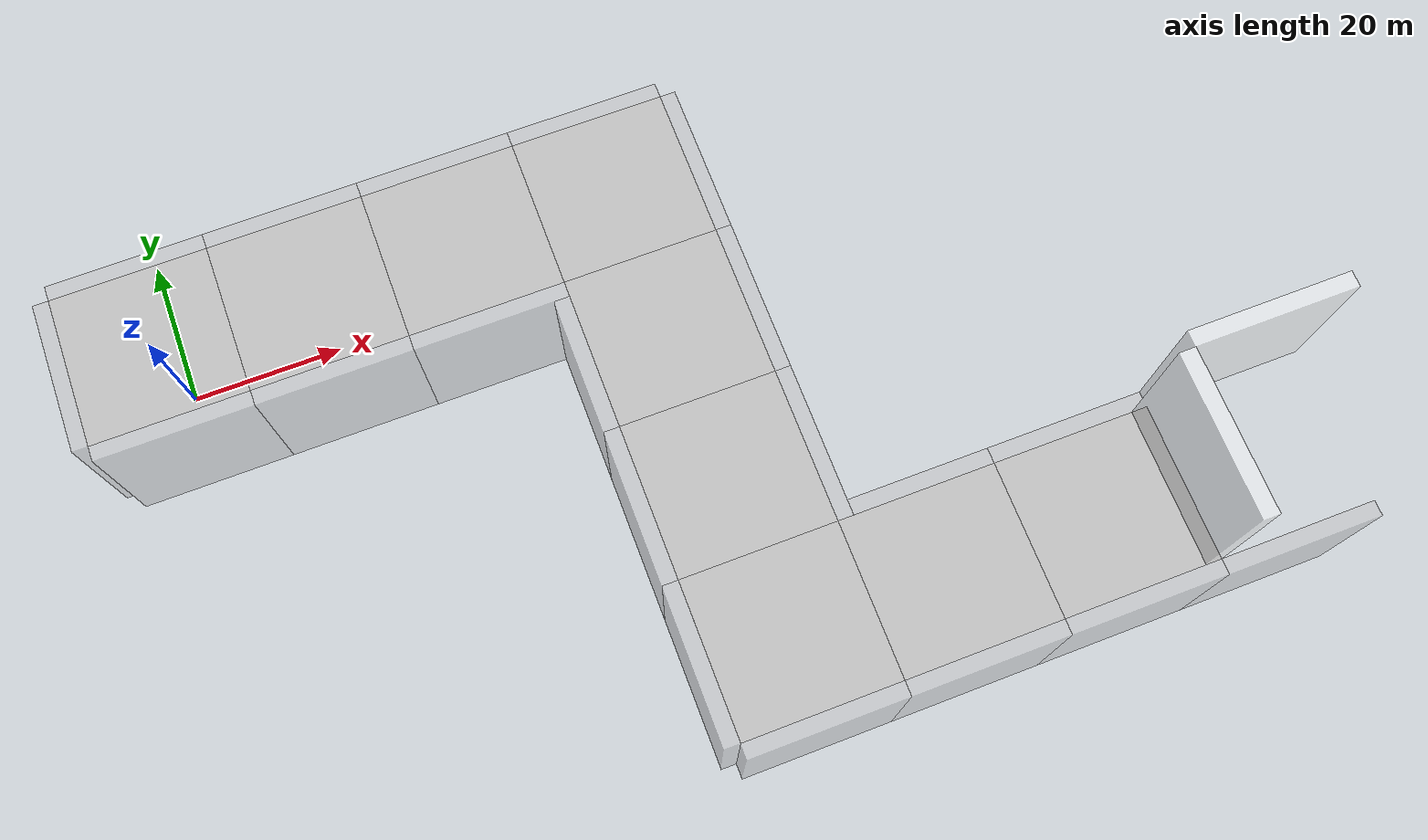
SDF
<sdf version="1.7">
 <model name="race2">
  <link name="link">
   <pose>0 11 10 -1.5708 0 0</pose>
   <visual name="visual">
    <transparency>0.6</transparency>
    <geometry><box><size>20 20 2</size></box></geometry>
    <material>
     <script>
      <uri>model://new_wall/materials/scripts</uri>
      <uri>model://new_wall/materials/textures/</uri>
      <name>NewWall/Image</name>
     </script>
     <shader type="pixel"/>
    </material>
   </visual>
   <collision name="collision">
    <geometry><box><size>20 20 2</size></box></geometry>
    <surface>
     <friction>
      <ode><mu>100</mu><mu2>50</mu2><fdir1>0 0 0</fdir1><slip1>0</slip1><slip2>0</slip2></ode>
      <torsional>
       <coefficient>1</coefficient>
       <patch_radius>0</patch_radius>
       <surface_radius>0</surface_radius>
       <use_patch_radius>1</use_patch_radius>
       <ode><slip>0</slip></ode>
      </torsional>
     </friction>
     <bounce><restitution_coefficient>0</restitution_coefficient><threshold>1e+06</threshold></bounce>
     <contact>
      <collide_without_contact>0</collide_without_contact>
      <collide_without_contact_bitmask>1</collide_without_contact_bitmask>
      <collide_bitmask>1</collide_bitmask>
      <ode>
       <soft_cfm>0</soft_cfm>
       <soft_erp>0.2</soft_erp>
       <kp>1e+13</kp>
       <kd>1</kd>
       <max_vel>0.01</max_vel>
       <min_depth>0</min_depth>
      </ode>
      <bullet>
       <split_impulse>1</split_impulse>
       <split_impulse_penetration_threshold>-0.01</split_impulse_penetration_threshold>
       <soft_cfm>0</soft_cfm>
       <soft_erp>0.2</soft_erp>
       <kp>1e+13</kp>
       <kd>1</kd>
      </bullet>
     </contact>
    </surface>
   </collision>
  </link>
  <link name="link_clone">
   <pose>0 -11 10 -1.5708 0 0</pose>
   <visual name="visual">
    <transparency>0.6</transparency>
    <geometry><box><size>20 20 2</size></box></geometry>
    <material>
     <script>
      <uri>model://new_wall/materials/scripts</uri>
      <uri>model://new_wall/materials/textures/</uri>
      <name>NewWall/Image</name>
     </script>
     <shader type="pixel"/>
    </material>
   </visual>
   <collision name="collision">
    <geometry><box><size>20 20 2</size></box></geometry>
    <surface>
     <friction>
      <ode><mu>1</mu><mu2>1</mu2><fdir1>0 0 0</fdir1><slip1>0</slip1><slip2>0</slip2></ode>
      <torsional>
       <coefficient>1</coefficient>
       <patch_radius>0</patch_radius>
       <surface_radius>0</surface_radius>
       <use_patch_radius>1</use_patch_radius>
       <ode><slip>0</slip></ode>
      </torsional>
     </friction>
     <bounce><restitution_coefficient>0</restitution_coefficient><threshold>1e+06</threshold></bounce>
     <contact>
      <collide_without_contact>0</collide_without_contact>
      <collide_without_contact_bitmask>1</collide_without_contact_bitmask>
      <collide_bitmask>1</collide_bitmask>
      <ode>
       <soft_cfm>0</soft_cfm>
       <soft_erp>0.2</soft_erp>
       <kp>1e+13</kp>
       <kd>1</kd>
       <max_vel>0.01</max_vel>
       <min_depth>0</min_depth>
      </ode>
      <bullet>
       <split_impulse>1</split_impulse>
       <split_impulse_penetration_threshold>-0.01</split_impulse_penetration_threshold>
       <soft_cfm>0</soft_cfm>
       <soft_erp>0.2</soft_erp>
       <kp>1e+13</kp>
       <kd>1</kd>
      </bullet>
     </contact>
    </surface>
   </collision>
  </link>
  <link name="link_clone_0">
   <pose>-11 0 10 -1.5708 4e-06 1.5708</pose>
   <visual name="visual">
    <transparency>0.6</transparency>
    <geometry><box><size>20 20 2</size></box></geometry>
    <material>
     <script>
      <uri>model://new_wall/materials/scripts</uri>
      <uri>model://new_wall/materials/textures/</uri>
      <name>NewWall/Image</name>
     </script>
     <shader type="pixel"/>
    </material>
   </visual>
   <collision name="collision">
    <geometry><box><size>20 20 2</size></box></geometry>
    <surface>
     <friction>
      <ode><mu>1</mu><mu2>1</mu2><fdir1>0 0 0</fdir1><slip1>0</slip1><slip2>0</slip2></ode>
      <torsional>
       <coefficient>1</coefficient>
       <patch_radius>0</patch_radius>
       <surface_radius>0</surface_radius>
       <use_patch_radius>1</use_patch_radius>
       <ode><slip>0</slip></ode>
      </torsional>
     </friction>
     <bounce><restitution_coefficient>0</restitution_coefficient><threshold>1e+06</threshold></bounce>
     <contact>
      <collide_without_contact>0</collide_without_contact>
      <collide_without_contact_bitmask>1</collide_without_contact_bitmask>
      <collide_bitmask>1</collide_bitmask>
      <ode>
       <soft_cfm>0</soft_cfm>
       <soft_erp>0.2</soft_erp>
       <kp>1e+13</kp>
       <kd>1</kd>
       <max_vel>0.01</max_vel>
       <min_depth>0</min_depth>
      </ode>
      <bullet>
       <split_impulse>1</split_impulse>
       <split_impulse_penetration_threshold>-0.01</split_impulse_penetration_threshold>
       <soft_cfm>0</soft_cfm>
       <soft_erp>0.2</soft_erp>
       <kp>1e+13</kp>
       <kd>1</kd>
      </bullet>
     </contact>
    </surface>
   </collision>
  </link>
  <link name="link_clone_0_clone">
   <pose>49 -20 10 -1.5708 4e-06 1.5708</pose>
   <visual name="visual">
    <transparency>0.6</transparency>
    <geometry><box><size>20 20 2</size></box></geometry>
    <material>
     <script>
      <uri>model://new_wall/materials/scripts</uri>
      <uri>model://new_wall/materials/textures/</uri>
      <name>NewWall/Image</name>
     </script>
     <shader type="pixel"/>
    </material>
   </visual>
   <collision name="collision">
    <geometry><box><size>20 20 2</size></box></geometry>
    <surface>
     <friction>
      <ode><mu>1</mu><mu2>1</mu2><fdir1>0 0 0</fdir1><slip1>0</slip1><slip2>0</slip2></ode>
      <torsional>
       <coefficient>1</coefficient>
       <patch_radius>0</patch_radius>
       <surface_radius>0</surface_radius>
       <use_patch_radius>1</use_patch_radius>
       <ode><slip>0</slip></ode>
      </torsional>
     </friction>
     <bounce><restitution_coefficient>0</restitution_coefficient><threshold>1e+06</threshold></bounce>
     <contact>
      <collide_without_contact>0</collide_without_contact>
      <collide_without_contact_bitmask>1</collide_without_contact_bitmask>
      <collide_bitmask>1</collide_bitmask>
      <ode>
       <soft_cfm>0</soft_cfm>
       <soft_erp>0.2</soft_erp>
       <kp>1e+13</kp>
       <kd>1</kd>
       <max_vel>0.01</max_vel>
       <min_depth>0</min_depth>
      </ode>
      <bullet>
       <split_impulse>1</split_impulse>
       <split_impulse_penetration_threshold>-0.01</split_impulse_penetration_threshold>
       <soft_cfm>0</soft_cfm>
       <soft_erp>0.2</soft_erp>
       <kp>1e+13</kp>
       <kd>1</kd>
      </bullet>
     </contact>
    </surface>
   </collision>
  </link>
  <link name="link_clone_0_clone_0">
   <pose>71 0 10 -1.5708 4e-06 1.5708</pose>
   <visual name="visual">
    <transparency>0.6</transparency>
    <geometry><box><size>20 20 2</size></box></geometry>
    <material>
     <script>
      <uri>model://new_wall/materials/scripts</uri>
      <uri>model://new_wall/materials/textures/</uri>
      <name>NewWall/Image</name>
     </script>
     <shader type="pixel"/>
    </material>
   </visual>
   <collision name="collision">
    <geometry><box><size>20 20 2</size></box></geometry>
    <surface>
     <friction>
      <ode><mu>1</mu><mu2>1</mu2><fdir1>0 0 0</fdir1><slip1>0</slip1><slip2>0</slip2></ode>
      <torsional>
       <coefficient>1</coefficient>
       <patch_radius>0</patch_radius>
       <surface_radius>0</surface_radius>
       <use_patch_radius>1</use_patch_radius>
       <ode><slip>0</slip></ode>
      </torsional>
     </friction>
     <bounce><restitution_coefficient>0</restitution_coefficient><threshold>1e+06</threshold></bounce>
     <contact>
      <collide_without_contact>0</collide_without_contact>
      <collide_without_contact_bitmask>1</collide_without_contact_bitmask>
      <collide_bitmask>1</collide_bitmask>
      <ode>
       <soft_cfm>0</soft_cfm>
       <soft_erp>0.2</soft_erp>
       <kp>1e+13</kp>
       <kd>1</kd>
       <max_vel>0.01</max_vel>
       <min_depth>0</min_depth>
      </ode>
      <bullet>
       <split_impulse>1</split_impulse>
       <split_impulse_penetration_threshold>-0.01</split_impulse_penetration_threshold>
       <soft_cfm>0</soft_cfm>
       <soft_erp>0.2</soft_erp>
       <kp>1e+13</kp>
       <kd>1</kd>
      </bullet>
     </contact>
    </surface>
   </collision>
  </link>
  <link name="link_clone_0_clone_1">
   <pose>71 -20 10 -1.5708 4e-06 1.5708</pose>
   <visual name="visual">
    <transparency>0.6</transparency>
    <geometry><box><size>20 20 2</size></box></geometry>
    <material>
     <script>
      <uri>model://new_wall/materials/scripts</uri>
      <uri>model://new_wall/materials/textures/</uri>
      <name>NewWall/Image</name>
     </script>
     <shader type="pixel"/>
    </material>
   </visual>
   <collision name="collision">
    <geometry><box><size>20 20 2</size></box></geometry>
    <surface>
     <friction>
      <ode><mu>1</mu><mu2>1</mu2><fdir1>0 0 0</fdir1><slip1>0</slip1><slip2>0</slip2></ode>
      <torsional>
       <coefficient>1</coefficient>
       <patch_radius>0</patch_radius>
       <surface_radius>0</surface_radius>
       <use_patch_radius>1</use_patch_radius>
       <ode><slip>0</slip></ode>
      </torsional>
     </friction>
     <bounce><restitution_coefficient>0</restitution_coefficient><threshold>1e+06</threshold></bounce>
     <contact>
      <collide_without_contact>0</collide_without_contact>
      <collide_without_contact_bitmask>1</collide_without_contact_bitmask>
      <collide_bitmask>1</collide_bitmask>
      <ode>
       <soft_cfm>0</soft_cfm>
       <soft_erp>0.2</soft_erp>
       <kp>1e+13</kp>
       <kd>1</kd>
       <max_vel>0.01</max_vel>
       <min_depth>0</min_depth>
      </ode>
      <bullet>
       <split_impulse>1</split_impulse>
       <split_impulse_penetration_threshold>-0.01</split_impulse_penetration_threshold>
       <soft_cfm>0</soft_cfm>
       <soft_erp>0.2</soft_erp>
       <kp>1e+13</kp>
       <kd>1</kd>
      </bullet>
     </contact>
    </surface>
   </collision>
  </link>
  <link name="link_clone_0_clone_2">
   <pose>71 -40 10 -1.5708 4e-06 1.5708</pose>
   <visual name="visual">
    <transparency>0.6</transparency>
    <geometry><box><size>20 20 2</size></box></geometry>
    <material>
     <script>
      <uri>model://new_wall/materials/scripts</uri>
      <uri>model://new_wall/materials/textures/</uri>
      <name>NewWall/Image</name>
     </script>
     <shader type="pixel"/>
    </material>
   </visual>
   <collision name="collision">
    <geometry><box><size>20 20 2</size></box></geometry>
    <surface>
     <friction>
      <ode><mu>1</mu><mu2>1</mu2><fdir1>0 0 0</fdir1><slip1>0</slip1><slip2>0</slip2></ode>
      <torsional>
       <coefficient>1</coefficient>
       <patch_radius>0</patch_radius>
       <surface_radius>0</surface_radius>
       <use_patch_radius>1</use_patch_radius>
       <ode><slip>0</slip></ode>
      </torsional>
     </friction>
     <bounce><restitution_coefficient>0</restitution_coefficient><threshold>1e+06</threshold></bounce>
     <contact>
      <collide_without_contact>0</collide_without_contact>
      <collide_without_contact_bitmask>1</collide_without_contact_bitmask>
      <collide_bitmask>1</collide_bitmask>
      <ode>
       <soft_cfm>0</soft_cfm>
       <soft_erp>0.2</soft_erp>
       <kp>1e+13</kp>
       <kd>1</kd>
       <max_vel>0.01</max_vel>
       <min_depth>0</min_depth>
      </ode>
      <bullet>
       <split_impulse>1</split_impulse>
       <split_impulse_penetration_threshold>-0.01</split_impulse_penetration_threshold>
       <soft_cfm>0</soft_cfm>
       <soft_erp>0.2</soft_erp>
       <kp>1e+13</kp>
       <kd>1</kd>
      </bullet>
     </contact>
    </surface>
   </collision>
  </link>
  <link name="link_clone_0_clone_3">
   <pose>49 -40 10 -1.5708 4e-06 1.5708</pose>
   <visual name="visual">
    <transparency>0.6</transparency>
    <geometry><box><size>20 20 2</size></box></geometry>
    <material>
     <script>
      <uri>model://new_wall/materials/scripts</uri>
      <uri>model://new_wall/materials/textures/</uri>
      <name>NewWall/Image</name>
     </script>
     <shader type="pixel"/>
    </material>
   </visual>
   <collision name="collision">
    <geometry><box><size>20 20 2</size></box></geometry>
    <surface>
     <friction>
      <ode><mu>1</mu><mu2>1</mu2><fdir1>0 0 0</fdir1><slip1>0</slip1><slip2>0</slip2></ode>
      <torsional>
       <coefficient>1</coefficient>
       <patch_radius>0</patch_radius>
       <surface_radius>0</surface_radius>
       <use_patch_radius>1</use_patch_radius>
       <ode><slip>0</slip></ode>
      </torsional>
     </friction>
     <bounce><restitution_coefficient>0</restitution_coefficient><threshold>1e+06</threshold></bounce>
     <contact>
      <collide_without_contact>0</collide_without_contact>
      <collide_without_contact_bitmask>1</collide_without_contact_bitmask>
      <collide_bitmask>1</collide_bitmask>
      <ode>
       <soft_cfm>0</soft_cfm>
       <soft_erp>0.2</soft_erp>
       <kp>1e+13</kp>
       <kd>1</kd>
       <max_vel>0.01</max_vel>
       <min_depth>0</min_depth>
      </ode>
      <bullet>
       <split_impulse>1</split_impulse>
       <split_impulse_penetration_threshold>-0.01</split_impulse_penetration_threshold>
       <soft_cfm>0</soft_cfm>
       <soft_erp>0.2</soft_erp>
       <kp>1e+13</kp>
       <kd>1</kd>
      </bullet>
     </contact>
    </surface>
   </collision>
  </link>
  <link name="link_clone_0_clone_4">
   <pose>49 -60 10 -1.5708 4e-06 1.5708</pose>
   <visual name="visual">
    <transparency>0.6</transparency>
    <geometry><box><size>20 20 2</size></box></geometry>
    <material>
     <script>
      <uri>model://new_wall/materials/scripts</uri>
      <uri>model://new_wall/materials/textures/</uri>
      <name>NewWall/Image</name>
     </script>
     <shader type="pixel"/>
    </material>
   </visual>
   <collision name="collision">
    <geometry><box><size>20 20 2</size></box></geometry>
    <surface>
     <friction>
      <ode><mu>1</mu><mu2>1</mu2><fdir1>0 0 0</fdir1><slip1>0</slip1><slip2>0</slip2></ode>
      <torsional>
       <coefficient>1</coefficient>
       <patch_radius>0</patch_radius>
       <surface_radius>0</surface_radius>
       <use_patch_radius>1</use_patch_radius>
       <ode><slip>0</slip></ode>
      </torsional>
     </friction>
     <bounce><restitution_coefficient>0</restitution_coefficient><threshold>1e+06</threshold></bounce>
     <contact>
      <collide_without_contact>0</collide_without_contact>
      <collide_without_contact_bitmask>1</collide_without_contact_bitmask>
      <collide_bitmask>1</collide_bitmask>
      <ode>
       <soft_cfm>0</soft_cfm>
       <soft_erp>0.2</soft_erp>
       <kp>1e+13</kp>
       <kd>1</kd>
       <max_vel>0.01</max_vel>
       <min_depth>0</min_depth>
      </ode>
      <bullet>
       <split_impulse>1</split_impulse>
       <split_impulse_penetration_threshold>-0.01</split_impulse_penetration_threshold>
       <soft_cfm>0</soft_cfm>
       <soft_erp>0.2</soft_erp>
       <kp>1e+13</kp>
       <kd>1</kd>
      </bullet>
     </contact>
    </surface>
   </collision>
  </link>
  <link name="link_clone_1">
   <pose>20 11 10 -1.5708 0 0</pose>
   <visual name="visual">
    <transparency>0.6</transparency>
    <geometry><box><size>20 20 2</size></box></geometry>
    <material>
     <script>
      <uri>model://new_wall/materials/scripts</uri>
      <uri>model://new_wall/materials/textures/</uri>
      <name>NewWall/Image</name>
     </script>
     <shader type="pixel"/>
    </material>
   </visual>
   <collision name="collision">
    <geometry><box><size>20 20 2</size></box></geometry>
    <surface>
     <friction>
      <ode><mu>1</mu><mu2>1</mu2><fdir1>0 0 0</fdir1><slip1>0</slip1><slip2>0</slip2></ode>
      <torsional>
       <coefficient>1</coefficient>
       <patch_radius>0</patch_radius>
       <surface_radius>0</surface_radius>
       <use_patch_radius>1</use_patch_radius>
       <ode><slip>0</slip></ode>
      </torsional>
     </friction>
     <bounce><restitution_coefficient>0</restitution_coefficient><threshold>1e+06</threshold></bounce>
     <contact>
      <collide_without_contact>0</collide_without_contact>
      <collide_without_contact_bitmask>1</collide_without_contact_bitmask>
      <collide_bitmask>1</collide_bitmask>
      <ode>
       <soft_cfm>0</soft_cfm>
       <soft_erp>0.2</soft_erp>
       <kp>1e+13</kp>
       <kd>1</kd>
       <max_vel>0.01</max_vel>
       <min_depth>0</min_depth>
      </ode>
      <bullet>
       <split_impulse>1</split_impulse>
       <split_impulse_penetration_threshold>-0.01</split_impulse_penetration_threshold>
       <soft_cfm>0</soft_cfm>
       <soft_erp>0.2</soft_erp>
       <kp>1e+13</kp>
       <kd>1</kd>
      </bullet>
     </contact>
    </surface>
   </collision>
  </link>
  <link name="link_clone_2">
   <pose>20 -11 10 -1.5708 0 0</pose>
   <visual name="visual">
    <transparency>0.6</transparency>
    <geometry><box><size>20 20 2</size></box></geometry>
    <material>
     <script>
      <uri>model://new_wall/materials/scripts</uri>
      <uri>model://new_wall/materials/textures/</uri>
      <name>NewWall/Image</name>
     </script>
     <shader type="pixel"/>
    </material>
   </visual>
   <collision name="collision">
    <geometry><box><size>20 20 2</size></box></geometry>
    <surface>
     <friction>
      <ode><mu>1</mu><mu2>1</mu2><fdir1>0 0 0</fdir1><slip1>0</slip1><slip2>0</slip2></ode>
      <torsional>
       <coefficient>1</coefficient>
       <patch_radius>0</patch_radius>
       <surface_radius>0</surface_radius>
       <use_patch_radius>1</use_patch_radius>
       <ode><slip>0</slip></ode>
      </torsional>
     </friction>
     <bounce><restitution_coefficient>0</restitution_coefficient><threshold>1e+06</threshold></bounce>
     <contact>
      <collide_without_contact>0</collide_without_contact>
      <collide_without_contact_bitmask>1</collide_without_contact_bitmask>
      <collide_bitmask>1</collide_bitmask>
      <ode>
       <soft_cfm>0</soft_cfm>
       <soft_erp>0.2</soft_erp>
       <kp>1e+13</kp>
       <kd>1</kd>
       <max_vel>0.01</max_vel>
       <min_depth>0</min_depth>
      </ode>
      <bullet>
       <split_impulse>1</split_impulse>
       <split_impulse_penetration_threshold>-0.01</split_impulse_penetration_threshold>
       <soft_cfm>0</soft_cfm>
       <soft_erp>0.2</soft_erp>
       <kp>1e+13</kp>
       <kd>1</kd>
      </bullet>
     </contact>
    </surface>
   </collision>
  </link>
  <link name="link_clone_2_clone">
   <pose>60 -71 10 -1.5708 0 0</pose>
   <visual name="visual">
    <transparency>0.6</transparency>
    <geometry><box><size>20 20 2</size></box></geometry>
    <material>
     <script>
      <uri>model://new_wall/materials/scripts</uri>
      <uri>model://new_wall/materials/textures/</uri>
      <name>NewWall/Image</name>
     </script>
     <shader type="pixel"/>
    </material>
   </visual>
   <collision name="collision">
    <geometry><box><size>20 20 2</size></box></geometry>
    <surface>
     <friction>
      <ode><mu>1</mu><mu2>1</mu2><fdir1>0 0 0</fdir1><slip1>0</slip1><slip2>0</slip2></ode>
      <torsional>
       <coefficient>1</coefficient>
       <patch_radius>0</patch_radius>
       <surface_radius>0</surface_radius>
       <use_patch_radius>1</use_patch_radius>
       <ode><slip>0</slip></ode>
      </torsional>
     </friction>
     <bounce><restitution_coefficient>0</restitution_coefficient><threshold>1e+06</threshold></bounce>
     <contact>
      <collide_without_contact>0</collide_without_contact>
      <collide_without_contact_bitmask>1</collide_without_contact_bitmask>
      <collide_bitmask>1</collide_bitmask>
      <ode>
       <soft_cfm>0</soft_cfm>
       <soft_erp>0.2</soft_erp>
       <kp>1e+13</kp>
       <kd>1</kd>
       <max_vel>0.01</max_vel>
       <min_depth>0</min_depth>
      </ode>
      <bullet>
       <split_impulse>1</split_impulse>
       <split_impulse_penetration_threshold>-0.01</split_impulse_penetration_threshold>
       <soft_cfm>0</soft_cfm>
       <soft_erp>0.2</soft_erp>
       <kp>1e+13</kp>
       <kd>1</kd>
      </bullet>
     </contact>
    </surface>
   </collision>
  </link>
  <link name="link_clone_2_clone_0">
   <pose>80 -71 10 -1.5708 0 0</pose>
   <visual name="visual">
    <transparency>0.6</transparency>
    <geometry><box><size>20 20 2</size></box></geometry>
    <material>
     <script>
      <uri>model://new_wall/materials/scripts</uri>
      <uri>model://new_wall/materials/textures/</uri>
      <name>NewWall/Image</name>
     </script>
     <shader type="pixel"/>
    </material>
   </visual>
   <collision name="collision">
    <geometry><box><size>20 20 2</size></box></geometry>
    <surface>
     <friction>
      <ode><mu>1</mu><mu2>1</mu2><fdir1>0 0 0</fdir1><slip1>0</slip1><slip2>0</slip2></ode>
      <torsional>
       <coefficient>1</coefficient>
       <patch_radius>0</patch_radius>
       <surface_radius>0</surface_radius>
       <use_patch_radius>1</use_patch_radius>
       <ode><slip>0</slip></ode>
      </torsional>
     </friction>
     <bounce><restitution_coefficient>0</restitution_coefficient><threshold>1e+06</threshold></bounce>
     <contact>
      <collide_without_contact>0</collide_without_contact>
      <collide_without_contact_bitmask>1</collide_without_contact_bitmask>
      <collide_bitmask>1</collide_bitmask>
      <ode>
       <soft_cfm>0</soft_cfm>
       <soft_erp>0.2</soft_erp>
       <kp>1e+13</kp>
       <kd>1</kd>
       <max_vel>0.01</max_vel>
       <min_depth>0</min_depth>
      </ode>
      <bullet>
       <split_impulse>1</split_impulse>
       <split_impulse_penetration_threshold>-0.01</split_impulse_penetration_threshold>
       <soft_cfm>0</soft_cfm>
       <soft_erp>0.2</soft_erp>
       <kp>1e+13</kp>
       <kd>1</kd>
      </bullet>
     </contact>
    </surface>
   </collision>
  </link>
  <link name="link_clone_2_clone_1">
   <pose>80 -49 10 -1.5708 0 0</pose>
   <visual name="visual">
    <transparency>0.6</transparency>
    <geometry><box><size>20 20 2</size></box></geometry>
    <material>
     <script>
      <uri>model://new_wall/materials/scripts</uri>
      <uri>model://new_wall/materials/textures/</uri>
      <name>NewWall/Image</name>
     </script>
     <shader type="pixel"/>
    </material>
   </visual>
   <collision name="collision">
    <geometry><box><size>20 20 2</size></box></geometry>
    <surface>
     <friction>
      <ode><mu>1</mu><mu2>1</mu2><fdir1>0 0 0</fdir1><slip1>0</slip1><slip2>0</slip2></ode>
      <torsional>
       <coefficient>1</coefficient>
       <patch_radius>0</patch_radius>
       <surface_radius>0</surface_radius>
       <use_patch_radius>1</use_patch_radius>
       <ode><slip>0</slip></ode>
      </torsional>
     </friction>
     <bounce><restitution_coefficient>0</restitution_coefficient><threshold>1e+06</threshold></bounce>
     <contact>
      <collide_without_contact>0</collide_without_contact>
      <collide_without_contact_bitmask>1</collide_without_contact_bitmask>
      <collide_bitmask>1</collide_bitmask>
      <ode>
       <soft_cfm>0</soft_cfm>
       <soft_erp>0.2</soft_erp>
       <kp>1e+13</kp>
       <kd>1</kd>
       <max_vel>0.01</max_vel>
       <min_depth>0</min_depth>
      </ode>
      <bullet>
       <split_impulse>1</split_impulse>
       <split_impulse_penetration_threshold>-0.01</split_impulse_penetration_threshold>
       <soft_cfm>0</soft_cfm>
       <soft_erp>0.2</soft_erp>
       <kp>1e+13</kp>
       <kd>1</kd>
      </bullet>
     </contact>
    </surface>
   </collision>
  </link>
  <link name="link_clone_2_clone_1_clone">
   <pose>100 -49 10 -1.5708 0 0</pose>
   <visual name="visual">
    <transparency>0.6</transparency>
    <geometry><box><size>20 20 2</size></box></geometry>
    <material>
     <script>
      <uri>model://new_wall/materials/scripts</uri>
      <uri>model://new_wall/materials/textures/</uri>
      <name>NewWall/Image</name>
     </script>
     <shader type="pixel"/>
    </material>
   </visual>
   <collision name="collision">
    <geometry><box><size>20 20 2</size></box></geometry>
    <surface>
     <friction>
      <ode><mu>1</mu><mu2>1</mu2><fdir1>0 0 0</fdir1><slip1>0</slip1><slip2>0</slip2></ode>
      <torsional>
       <coefficient>1</coefficient>
       <patch_radius>0</patch_radius>
       <surface_radius>0</surface_radius>
       <use_patch_radius>1</use_patch_radius>
       <ode><slip>0</slip></ode>
      </torsional>
     </friction>
     <bounce><restitution_coefficient>0</restitution_coefficient><threshold>1e+06</threshold></bounce>
     <contact>
      <collide_without_contact>0</collide_without_contact>
      <collide_without_contact_bitmask>1</collide_without_contact_bitmask>
      <collide_bitmask>1</collide_bitmask>
      <ode>
       <soft_cfm>0</soft_cfm>
       <soft_erp>0.2</soft_erp>
       <kp>1e+13</kp>
       <kd>1</kd>
       <max_vel>0.01</max_vel>
       <min_depth>0</min_depth>
      </ode>
      <bullet>
       <split_impulse>1</split_impulse>
       <split_impulse_penetration_threshold>-0.01</split_impulse_penetration_threshold>
       <soft_cfm>0</soft_cfm>
       <soft_erp>0.2</soft_erp>
       <kp>1e+13</kp>
       <kd>1</kd>
      </bullet>
     </contact>
    </surface>
   </collision>
  </link>
  <link name="link_clone_2_clone_1_clone_0">
   <pose>100 -71 10 -1.5708 0 0</pose>
   <visual name="visual">
    <transparency>0.6</transparency>
    <geometry><box><size>20 20 2</size></box></geometry>
    <material>
     <script>
      <uri>model://new_wall/materials/scripts</uri>
      <uri>model://new_wall/materials/textures/</uri>
      <name>NewWall/Image</name>
     </script>
     <shader type="pixel"/>
    </material>
   </visual>
   <collision name="collision">
    <geometry><box><size>20 20 2</size></box></geometry>
    <surface>
     <friction>
      <ode><mu>1</mu><mu2>1</mu2><fdir1>0 0 0</fdir1><slip1>0</slip1><slip2>0</slip2></ode>
      <torsional>
       <coefficient>1</coefficient>
       <patch_radius>0</patch_radius>
       <surface_radius>0</surface_radius>
       <use_patch_radius>1</use_patch_radius>
       <ode><slip>0</slip></ode>
      </torsional>
     </friction>
     <bounce><restitution_coefficient>0</restitution_coefficient><threshold>1e+06</threshold></bounce>
     <contact>
      <collide_without_contact>0</collide_without_contact>
      <collide_without_contact_bitmask>1</collide_without_contact_bitmask>
      <collide_bitmask>1</collide_bitmask>
      <ode>
       <soft_cfm>0</soft_cfm>
       <soft_erp>0.2</soft_erp>
       <kp>1e+13</kp>
       <kd>1</kd>
       <max_vel>0.01</max_vel>
       <min_depth>0</min_depth>
      </ode>
      <bullet>
       <split_impulse>1</split_impulse>
       <split_impulse_penetration_threshold>-0.01</split_impulse_penetration_threshold>
       <soft_cfm>0</soft_cfm>
       <soft_erp>0.2</soft_erp>
       <kp>1e+13</kp>
       <kd>1</kd>
      </bullet>
     </contact>
    </surface>
   </collision>
  </link>
  <link name="link_clone_2_clone_2">
   <pose>120 -71 10 -1.5708 0 0</pose>
   <visual name="visual">
    <transparency>0.6</transparency>
    <geometry><box><size>20 20 2</size></box></geometry>
    <material>
     <script>
      <uri>model://new_wall/materials/scripts</uri>
      <uri>model://new_wall/materials/textures/</uri>
      <name>NewWall/Image</name>
     </script>
     <shader type="pixel"/>
    </material>
   </visual>
   <collision name="collision">
    <geometry><box><size>20 20 2</size></box></geometry>
    <surface>
     <friction>
      <ode><mu>1</mu><mu2>1</mu2><fdir1>0 0 0</fdir1><slip1>0</slip1><slip2>0</slip2></ode>
      <torsional>
       <coefficient>1</coefficient>
       <patch_radius>0</patch_radius>
       <surface_radius>0</surface_radius>
       <use_patch_radius>1</use_patch_radius>
       <ode><slip>0</slip></ode>
      </torsional>
     </friction>
     <bounce><restitution_coefficient>0</restitution_coefficient><threshold>1e+06</threshold></bounce>
     <contact>
      <collide_without_contact>0</collide_without_contact>
      <collide_without_contact_bitmask>1</collide_without_contact_bitmask>
      <collide_bitmask>1</collide_bitmask>
      <ode>
       <soft_cfm>0</soft_cfm>
       <soft_erp>0.2</soft_erp>
       <kp>1e+13</kp>
       <kd>1</kd>
       <max_vel>0.01</max_vel>
       <min_depth>0</min_depth>
      </ode>
      <bullet>
       <split_impulse>1</split_impulse>
       <split_impulse_penetration_threshold>-0.01</split_impulse_penetration_threshold>
       <soft_cfm>0</soft_cfm>
       <soft_erp>0.2</soft_erp>
       <kp>1e+13</kp>
       <kd>1</kd>
      </bullet>
     </contact>
    </surface>
   </collision>
  </link>
  <link name="link_clone_2_clone_3">
   <pose>120 -49 30 -1.5708 0 0</pose>
   <inertial>
    <mass>1</mass>
    <inertia><ixx>1</ixx><ixy>0</ixy><ixz>0</ixz><iyy>1</iyy><iyz>0</iyz><izz>1</izz></inertia>
   </inertial>
   <visual name="visual">
    <transparency>0.6</transparency>
    <geometry><box><size>20 20 2</size></box></geometry>
    <material>
     <script>
      <uri>model://new_wall/materials/scripts</uri>
      <uri>model://new_wall/materials/textures/</uri>
      <name>NewWall/Image</name>
     </script>
     <shader type="pixel"><normal_map>__default__</normal_map></shader>
     <ambient>1 1 1 1</ambient>
     <diffuse>1 1 1 1</diffuse>
     <specular>0.03 0.03 0.03 1</specular>
     <emissive>0 0 0 1</emissive>
    </material>
   </visual>
   <collision name="collision">
    <geometry><box><size>20 20 2</size></box></geometry>
    <surface>
     <friction>
      <ode><mu>1</mu><mu2>1</mu2><fdir1>0 0 0</fdir1><slip1>0</slip1><slip2>0</slip2></ode>
      <torsional>
       <coefficient>1</coefficient>
       <patch_radius>0</patch_radius>
       <surface_radius>0</surface_radius>
       <use_patch_radius>1</use_patch_radius>
       <ode><slip>0</slip></ode>
      </torsional>
     </friction>
     <bounce><restitution_coefficient>0</restitution_coefficient><threshold>1e+06</threshold></bounce>
     <contact>
      <collide_without_contact>0</collide_without_contact>
      <collide_without_contact_bitmask>1</collide_without_contact_bitmask>
      <collide_bitmask>1</collide_bitmask>
      <ode>
       <soft_cfm>0</soft_cfm>
       <soft_erp>0.2</soft_erp>
       <kp>1e+13</kp>
       <kd>1</kd>
       <max_vel>0.01</max_vel>
       <min_depth>0</min_depth>
      </ode>
      <bullet>
       <split_impulse>1</split_impulse>
       <split_impulse_penetration_threshold>-0.01</split_impulse_penetration_threshold>
       <soft_cfm>0</soft_cfm>
       <soft_erp>0.2</soft_erp>
       <kp>1e+13</kp>
       <kd>1</kd>
      </bullet>
     </contact>
    </surface>
   </collision>
  </link>
  <link name="link_clone_2_clone_3_clone_0_clone">
   <pose>109 -60 30 -1.5708 -4e-06 -1.5708</pose>
   <inertial>
    <mass>1</mass>
    <inertia><ixx>1</ixx><ixy>0</ixy><ixz>0</ixz><iyy>1</iyy><iyz>0</iyz><izz>1</izz></inertia>
   </inertial>
   <visual name="visual">
    <transparency>0.6</transparency>
    <geometry><box><size>20 20 2</size></box></geometry>
    <material>
     <script>
      <uri>model://new_wall/materials/scripts</uri>
      <uri>model://new_wall/materials/textures/</uri>
      <name>NewWall/Image</name>
     </script>
     <shader type="pixel"><normal_map>__default__</normal_map></shader>
     <ambient>1 1 1 1</ambient>
     <diffuse>1 1 1 1</diffuse>
     <specular>0.03 0.03 0.03 1</specular>
     <emissive>0 0 0 1</emissive>
    </material>
   </visual>
   <collision name="collision">
    <geometry><box><size>20 20 2</size></box></geometry>
    <surface>
     <friction>
      <ode><mu>1</mu><mu2>1</mu2><fdir1>0 0 0</fdir1><slip1>0</slip1><slip2>0</slip2></ode>
      <torsional>
       <coefficient>1</coefficient>
       <patch_radius>0</patch_radius>
       <surface_radius>0</surface_radius>
       <use_patch_radius>1</use_patch_radius>
       <ode><slip>0</slip></ode>
      </torsional>
     </friction>
     <bounce><restitution_coefficient>0</restitution_coefficient><threshold>1e+06</threshold></bounce>
     <contact>
      <collide_without_contact>0</collide_without_contact>
      <collide_without_contact_bitmask>1</collide_without_contact_bitmask>
      <collide_bitmask>1</collide_bitmask>
      <ode>
       <soft_cfm>0</soft_cfm>
       <soft_erp>0.2</soft_erp>
       <kp>1e+13</kp>
       <kd>1</kd>
       <max_vel>0.01</max_vel>
       <min_depth>0</min_depth>
      </ode>
      <bullet>
       <split_impulse>1</split_impulse>
       <split_impulse_penetration_threshold>-0.01</split_impulse_penetration_threshold>
       <soft_cfm>0</soft_cfm>
       <soft_erp>0.2</soft_erp>
       <kp>1e+13</kp>
       <kd>1</kd>
      </bullet>
     </contact>
    </surface>
   </collision>
  </link>
  <link name="link_clone_3">
   <pose>40 -11 10 -1.5708 0 0</pose>
   <visual name="visual">
    <transparency>0.6</transparency>
    <geometry><box><size>20 20 2</size></box></geometry>
    <material>
     <script>
      <uri>model://new_wall/materials/scripts</uri>
      <uri>model://new_wall/materials/textures/</uri>
      <name>NewWall/Image</name>
     </script>
     <shader type="pixel"/>
    </material>
   </visual>
   <collision name="collision">
    <geometry><box><size>20 20 2</size></box></geometry>
    <surface>
     <friction>
      <ode><mu>1</mu><mu2>1</mu2><fdir1>0 0 0</fdir1><slip1>0</slip1><slip2>0</slip2></ode>
      <torsional>
       <coefficient>1</coefficient>
       <patch_radius>0</patch_radius>
       <surface_radius>0</surface_radius>
       <use_patch_radius>1</use_patch_radius>
       <ode><slip>0</slip></ode>
      </torsional>
     </friction>
     <bounce><restitution_coefficient>0</restitution_coefficient><threshold>1e+06</threshold></bounce>
     <contact>
      <collide_without_contact>0</collide_without_contact>
      <collide_without_contact_bitmask>1</collide_without_contact_bitmask>
      <collide_bitmask>1</collide_bitmask>
      <ode>
       <soft_cfm>0</soft_cfm>
       <soft_erp>0.2</soft_erp>
       <kp>1e+13</kp>
       <kd>1</kd>
       <max_vel>0.01</max_vel>
       <min_depth>0</min_depth>
      </ode>
      <bullet>
       <split_impulse>1</split_impulse>
       <split_impulse_penetration_threshold>-0.01</split_impulse_penetration_threshold>
       <soft_cfm>0</soft_cfm>
       <soft_erp>0.2</soft_erp>
       <kp>1e+13</kp>
       <kd>1</kd>
      </bullet>
     </contact>
    </surface>
   </collision>
  </link>
  <link name="link_clone_4">
   <pose>40 11 10 -1.5708 0 0</pose>
   <visual name="visual">
    <transparency>0.6</transparency>
    <geometry><box><size>20 20 2</size></box></geometry>
    <material>
     <script>
      <uri>model://new_wall/materials/scripts</uri>
      <uri>model://new_wall/materials/textures/</uri>
      <name>NewWall/Image</name>
     </script>
     <shader type="pixel"/>
    </material>
   </visual>
   <collision name="collision">
    <geometry><box><size>20 20 2</size></box></geometry>
    <surface>
     <friction>
      <ode><mu>1</mu><mu2>1</mu2><fdir1>0 0 0</fdir1><slip1>0</slip1><slip2>0</slip2></ode>
      <torsional>
       <coefficient>1</coefficient>
       <patch_radius>0</patch_radius>
       <surface_radius>0</surface_radius>
       <use_patch_radius>1</use_patch_radius>
       <ode><slip>0</slip></ode>
      </torsional>
     </friction>
     <bounce><restitution_coefficient>0</restitution_coefficient><threshold>1e+06</threshold></bounce>
     <contact>
      <collide_without_contact>0</collide_without_contact>
      <collide_without_contact_bitmask>1</collide_without_contact_bitmask>
      <collide_bitmask>1</collide_bitmask>
      <ode>
       <soft_cfm>0</soft_cfm>
       <soft_erp>0.2</soft_erp>
       <kp>1e+13</kp>
       <kd>1</kd>
       <max_vel>0.01</max_vel>
       <min_depth>0</min_depth>
      </ode>
      <bullet>
       <split_impulse>1</split_impulse>
       <split_impulse_penetration_threshold>-0.01</split_impulse_penetration_threshold>
       <soft_cfm>0</soft_cfm>
       <soft_erp>0.2</soft_erp>
       <kp>1e+13</kp>
       <kd>1</kd>
      </bullet>
     </contact>
    </surface>
   </collision>
  </link>
  <link name="link_clone_5">
   <pose>60 11 10 -1.5708 0 0</pose>
   <visual name="visual">
    <transparency>0.6</transparency>
    <geometry><box><size>20 20 2</size></box></geometry>
    <material>
     <script>
      <uri>model://new_wall/materials/scripts</uri>
      <uri>model://new_wall/materials/textures/</uri>
      <name>NewWall/Image</name>
     </script>
     <shader type="pixel"/>
    </material>
   </visual>
   <collision name="collision">
    <geometry><box><size>20 20 2</size></box></geometry>
    <surface>
     <friction>
      <ode><mu>1</mu><mu2>1</mu2><fdir1>0 0 0</fdir1><slip1>0</slip1><slip2>0</slip2></ode>
      <torsional>
       <coefficient>1</coefficient>
       <patch_radius>0</patch_radius>
       <surface_radius>0</surface_radius>
       <use_patch_radius>1</use_patch_radius>
       <ode><slip>0</slip></ode>
      </torsional>
     </friction>
     <bounce><restitution_coefficient>0</restitution_coefficient><threshold>1e+06</threshold></bounce>
     <contact>
      <collide_without_contact>0</collide_without_contact>
      <collide_without_contact_bitmask>1</collide_without_contact_bitmask>
      <collide_bitmask>1</collide_bitmask>
      <ode>
       <soft_cfm>0</soft_cfm>
       <soft_erp>0.2</soft_erp>
       <kp>1e+13</kp>
       <kd>1</kd>
       <max_vel>0.01</max_vel>
       <min_depth>0</min_depth>
      </ode>
      <bullet>
       <split_impulse>1</split_impulse>
       <split_impulse_penetration_threshold>-0.01</split_impulse_penetration_threshold>
       <soft_cfm>0</soft_cfm>
       <soft_erp>0.2</soft_erp>
       <kp>1e+13</kp>
       <kd>1</kd>
      </bullet>
     </contact>
    </surface>
   </collision>
  </link>
  <model name="oneSidedPlane_2">
   <static>1</static>
   <link name="link">
    <collision name="collision"><geometry><box><size>20 20 0.1</size></box></geometry></collision>
    <visual name="visual">
     <cast_shadows>0</cast_shadows>
     <geometry><mesh><scale>1 1 1</scale><uri>model://oneSidedPlane_2/wall1.obj</uri></mesh></geometry>
    </visual>
   </link>
   <pose>0 0 20 0 -0 0</pose>
  </model>
  <model name="oneSidedPlane_2_clone">
   <static>1</static>
   <link name="link">
    <collision name="collision"><geometry><box><size>20 20 0.1</size></box></geometry></collision>
    <visual name="visual">
     <cast_shadows>0</cast_shadows>
     <geometry><mesh><scale>1 1 1</scale><uri>model://oneSidedPlane_2/wall1.obj</uri></mesh></geometry>
    </visual>
   </link>
   <pose>20 0 20 0 -0 0</pose>
  </model>
  <model name="oneSidedPlane_2_clone_0">
   <static>1</static>
   <link name="link">
    <collision name="collision"><geometry><box><size>20 20 0.1</size></box></geometry></collision>
    <visual name="visual">
     <cast_shadows>0</cast_shadows>
     <geometry><mesh><scale>1 1 1</scale><uri>model://oneSidedPlane_2/wall1.obj</uri></mesh></geometry>
    </visual>
   </link>
   <pose>40 0 20 0 -0 0</pose>
  </model>
  <model name="oneSidedPlane_2_clone_1">
   <static>1</static>
   <link name="link">
    <collision name="collision"><geometry><box><size>20 20 0.1</size></box></geometry></collision>
    <visual name="visual">
     <cast_shadows>0</cast_shadows>
     <geometry><mesh><scale>1 1 1</scale><uri>model://oneSidedPlane_2/wall1.obj</uri></mesh></geometry>
    </visual>
   </link>
   <pose>60 0 20 0 -0 0</pose>
  </model>
  <model name="oneSidedPlane_2_clone_2">
   <static>1</static>
   <link name="link">
    <collision name="collision"><geometry><box><size>20 20 0.1</size></box></geometry></collision>
    <visual name="visual">
     <cast_shadows>0</cast_shadows>
     <geometry><mesh><scale>1 1 1</scale><uri>model://oneSidedPlane_2/wall1.obj</uri></mesh></geometry>
    </visual>
   </link>
   <pose>60 -20 20 0 -0 0</pose>
  </model>
  <model name="oneSidedPlane_2_clone_3">
   <static>1</static>
   <link name="link">
    <collision name="collision"><geometry><box><size>20 20 0.1</size></box></geometry></collision>
    <visual name="visual">
     <cast_shadows>0</cast_shadows>
     <geometry><mesh><scale>1 1 1</scale><uri>model://oneSidedPlane_2/wall1.obj</uri></mesh></geometry>
    </visual>
   </link>
   <pose>60 -40 20 0 -0 0</pose>
  </model>
  <model name="oneSidedPlane_2_clone_4">
   <static>1</static>
   <link name="link">
    <collision name="collision"><geometry><box><size>20 20 0.1</size></box></geometry></collision>
    <visual name="visual">
     <cast_shadows>0</cast_shadows>
     <geometry><mesh><scale>1 1 1</scale><uri>model://oneSidedPlane_2/wall1.obj</uri></mesh></geometry>
    </visual>
   </link>
   <pose>60 -60 20 0 -0 0</pose>
  </model>
  <model name="oneSidedPlane_2_clone_5">
   <static>1</static>
   <link name="link">
    <collision name="collision"><geometry><box><size>20 20 0.1</size></box></geometry></collision>
    <visual name="visual">
     <cast_shadows>0</cast_shadows>
     <geometry><mesh><scale>1 1 1</scale><uri>model://oneSidedPlane_2/wall1.obj</uri></mesh></geometry>
    </visual>
   </link>
   <pose>80 -60 20 0 -0 0</pose>
  </model>
  <model name="oneSidedPlane_2_clone_5_clone">
   <static>1</static>
   <link name="link">
    <collision name="collision"><geometry><box><size>20 20 0.1</size></box></geometry></collision>
    <visual name="visual">
     <cast_shadows>0</cast_shadows>
     <geometry><mesh><scale>1 1 1</scale><uri>model://oneSidedPlane_2/wall1.obj</uri></mesh></geometry>
    </visual>
   </link>
   <pose>100 -60 20 0 -0 0</pose>
  </model>
  <static>1</static>
 </model>
</sdf>
